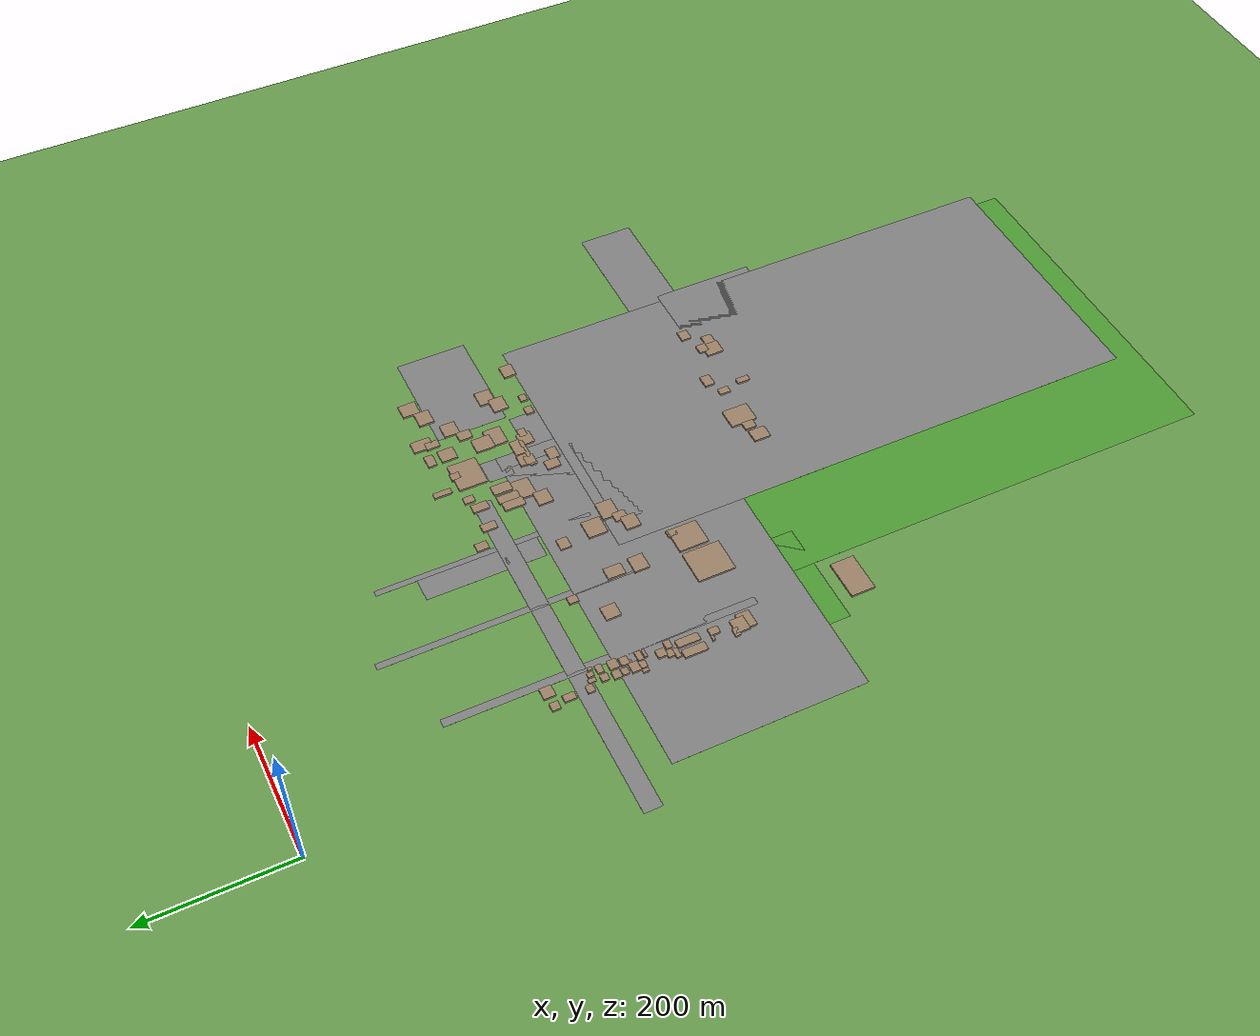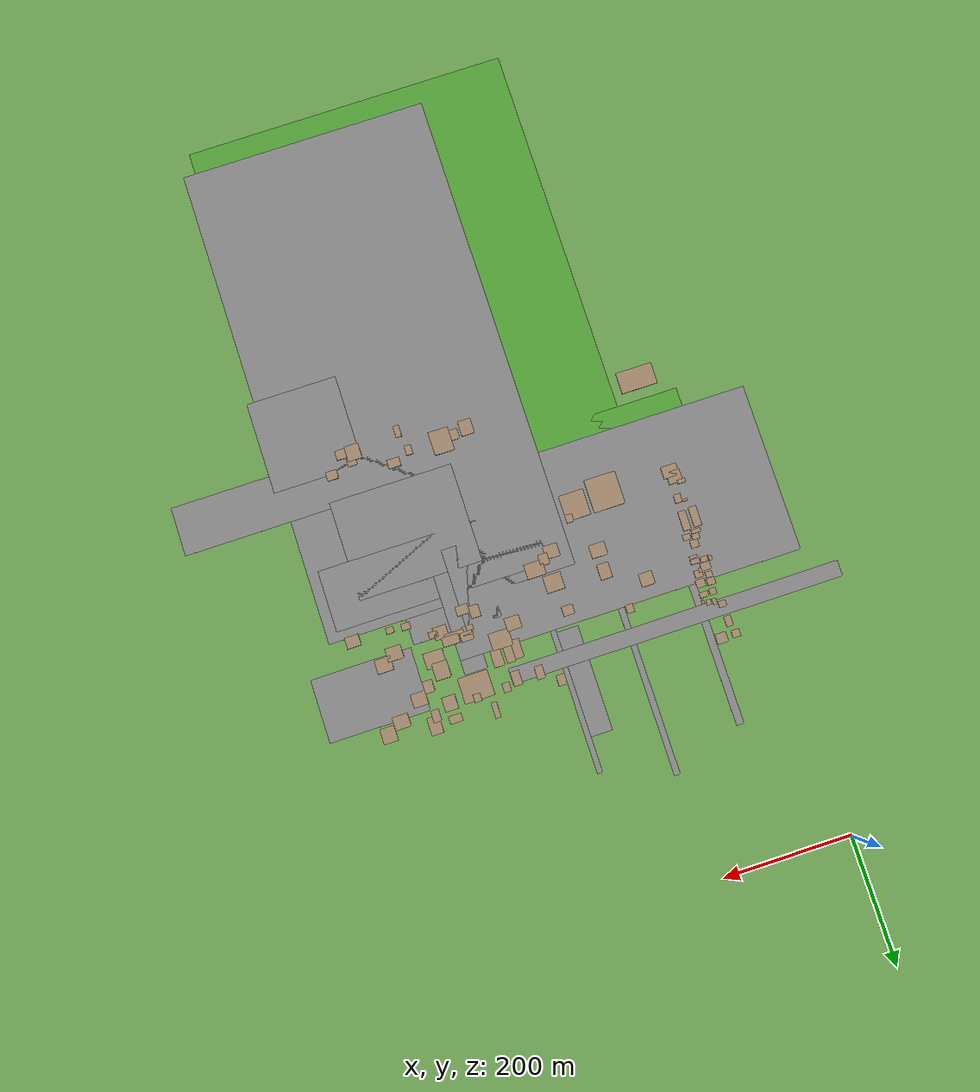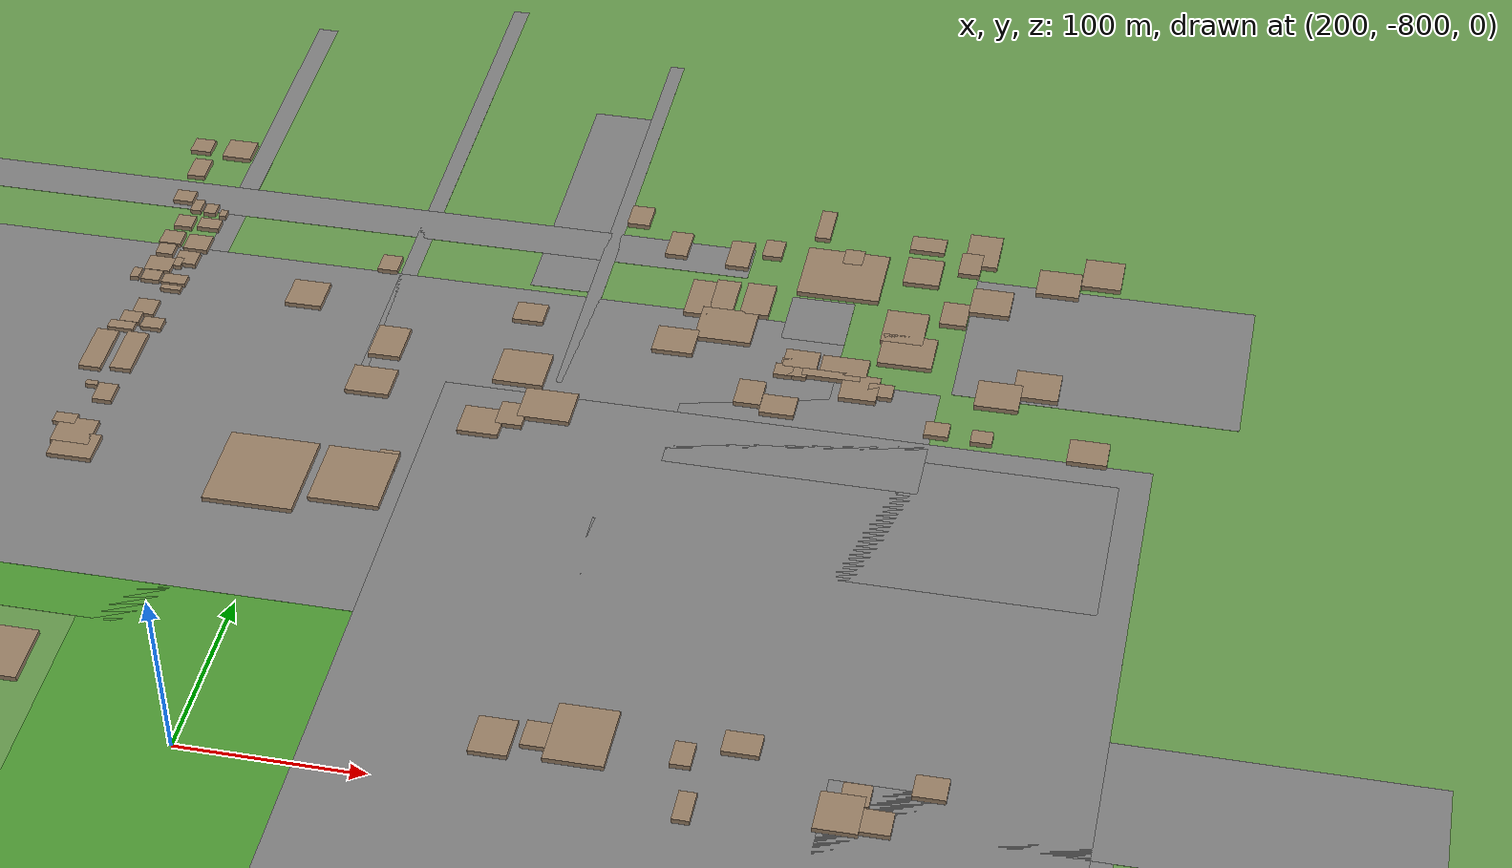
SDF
<sdf version="1.9">
 <world name="kimje_farmland">
  <model name="ground_plane">
   <static>true</static>
   <link name="link">
    <collision name="collision">
     <geometry><plane><normal>0 0 1</normal><size>2000 2000</size></plane></geometry>
    </collision>
    <visual name="visual">
     <geometry><plane><normal>0 0 1</normal><size>2000 2000</size></plane></geometry>
     <material><ambient>0.4 0.6 0.3 1</ambient><diffuse>0.4 0.6 0.3 1</diffuse></material>
    </visual>
   </link>
  </model>
  <model name="osm_7">
   <static>true</static>
   <pose>457.62 -898.85 0.040 0 0 0</pose>
   <link name="link">
    <collision name="collision"><geometry><box><size>392.42 770.92 0.080</size></box></geometry></collision>
    <visual name="visual">
     <geometry><box><size>392.42 770.92 0.080</size></box></geometry>
     <material><ambient>0.5 0.5 0.5 1</ambient><diffuse>0.5 0.5 0.5 1</diffuse></material>
    </visual>
   </link>
  </model>
  <model name="osm_43">
   <static>true</static>
   <pose>216.52 -345.34 0.040 0 0 0</pose>
   <link name="link">
    <collision name="collision"><geometry><box><size>9.61 360.61 0.080</size></box></geometry></collision>
    <visual name="visual">
     <geometry><box><size>9.61 360.61 0.080</size></box></geometry>
     <material><ambient>0.5 0.5 0.5 1</ambient><diffuse>0.5 0.5 0.5 1</diffuse></material>
    </visual>
   </link>
  </model>
  <model name="osm_46">
   <static>true</static>
   <pose>144.42 -381.84 0.040 0 0 0</pose>
   <link name="link">
    <collision name="collision"><geometry><box><size>526.87 25.09 0.080</size></box></geometry></collision>
    <visual name="visual">
     <geometry><box><size>526.87 25.09 0.080</size></box></geometry>
     <material><ambient>0.5 0.5 0.5 1</ambient><diffuse>0.5 0.5 0.5 1</diffuse></material>
    </visual>
   </link>
  </model>
  <model name="osm_54">
   <static>true</static>
   <pose>325.49 -352.69 0.040 0 0 0</pose>
   <link name="link">
    <collision name="collision"><geometry><box><size>8.45 298.10 0.080</size></box></geometry></collision>
    <visual name="visual">
     <geometry><box><size>8.45 298.10 0.080</size></box></geometry>
     <material><ambient>0.5 0.5 0.5 1</ambient><diffuse>0.5 0.5 0.5 1</diffuse></material>
    </visual>
   </link>
  </model>
  <model name="osm_56">
   <static>true</static>
   <pose>102.39 -418.28 0.040 0 0 0</pose>
   <link name="link">
    <collision name="collision"><geometry><box><size>11.99 423.56 0.080</size></box></geometry></collision>
    <visual name="visual">
     <geometry><box><size>11.99 423.56 0.080</size></box></geometry>
     <material><ambient>0.5 0.5 0.5 1</ambient><diffuse>0.5 0.5 0.5 1</diffuse></material>
    </visual>
   </link>
  </model>
  <model name="osm_59">
   <static>true</static>
   <pose>606.28 -749.03 0.040 0 0 0</pose>
   <link name="link">
    <collision name="collision"><geometry><box><size>430.55 77.18 0.080</size></box></geometry></collision>
    <visual name="visual">
     <geometry><box><size>430.55 77.18 0.080</size></box></geometry>
     <material><ambient>0.5 0.5 0.5 1</ambient><diffuse>0.5 0.5 0.5 1</diffuse></material>
    </visual>
   </link>
  </model>
  <model name="osm_62">
   <static>true</static>
   <pose>467.78 -576.32 0.040 0 0 0</pose>
   <link name="link">
    <collision name="collision"><geometry><box><size>338.75 96.90 0.080</size></box></geometry></collision>
    <visual name="visual">
     <geometry><box><size>338.75 96.90 0.080</size></box></geometry>
     <material><ambient>0.5 0.5 0.5 1</ambient><diffuse>0.5 0.5 0.5 1</diffuse></material>
    </visual>
   </link>
  </model>
  <model name="osm_64">
   <static>true</static>
   <pose>593.54 -833.12 0.040 0 0 0</pose>
   <link name="link">
    <collision name="collision"><geometry><box><size>142.78 145.29 0.080</size></box></geometry></collision>
    <visual name="visual">
     <geometry><box><size>142.78 145.29 0.080</size></box></geometry>
     <material><ambient>0.5 0.5 0.5 1</ambient><diffuse>0.5 0.5 0.5 1</diffuse></material>
    </visual>
   </link>
  </model>
  <model name="osm_65">
   <static>true</static>
   <pose>491.71 -641.08 0.040 0 0 0</pose>
   <link name="link">
    <collision name="collision"><geometry><box><size>195.21 157.25 0.080</size></box></geometry></collision>
    <visual name="visual">
     <geometry><box><size>195.21 157.25 0.080</size></box></geometry>
     <material><ambient>0.5 0.5 0.5 1</ambient><diffuse>0.5 0.5 0.5 1</diffuse></material>
    </visual>
   </link>
  </model>
  <model name="osm_95">
   <static>true</static>
   <pose>200.32 -561.10 0.040 0 0 0</pose>
   <link name="link">
    <collision name="collision"><geometry><box><size>544.47 266.11 0.080</size></box></geometry></collision>
    <visual name="visual">
     <geometry><box><size>544.47 266.11 0.080</size></box></geometry>
     <material><ambient>0.5 0.5 0.5 1</ambient><diffuse>0.5 0.5 0.5 1</diffuse></material>
    </visual>
   </link>
  </model>
  <model name="osm_103">
   <static>true</static>
   <pose>454.55 -423.58 0.040 0 0 0</pose>
   <link name="link">
    <collision name="collision"><geometry><box><size>36.00 35.97 0.080</size></box></geometry></collision>
    <visual name="visual">
     <geometry><box><size>36.00 35.97 0.080</size></box></geometry>
     <material><ambient>0.5 0.5 0.5 1</ambient><diffuse>0.5 0.5 0.5 1</diffuse></material>
    </visual>
   </link>
  </model>
  <model name="osm_108">
   <static>true</static>
   <pose>304.50 -341.20 0.040 0 0 0</pose>
   <link name="link">
    <collision name="collision"><geometry><box><size>34.34 164.85 0.080</size></box></geometry></collision>
    <visual name="visual">
     <geometry><box><size>34.34 164.85 0.080</size></box></geometry>
     <material><ambient>0.5 0.5 0.5 1</ambient><diffuse>0.5 0.5 0.5 1</diffuse></material>
    </visual>
   </link>
  </model>
  <model name="osm_113">
   <static>true</static>
   <pose>368.15 -624.36 0.040 0 0 0</pose>
   <link name="link">
    <collision name="collision"><geometry><box><size>3.70 42.74 0.080</size></box></geometry></collision>
    <visual name="visual">
     <geometry><box><size>3.70 42.74 0.080</size></box></geometry>
     <material><ambient>0.5 0.5 0.5 1</ambient><diffuse>0.5 0.5 0.5 1</diffuse></material>
    </visual>
   </link>
  </model>
  <model name="osm_114">
   <static>true</static>
   <pose>410.18 -514.47 0.040 0 0 0</pose>
   <link name="link">
    <collision name="collision"><geometry><box><size>78.25 164.78 0.080</size></box></geometry></collision>
    <visual name="visual">
     <geometry><box><size>78.25 164.78 0.080</size></box></geometry>
     <material><ambient>0.5 0.5 0.5 1</ambient><diffuse>0.5 0.5 0.5 1</diffuse></material>
    </visual>
   </link>
  </model>
  <model name="osm_115">
   <static>true</static>
   <pose>617.06 -421.43 0.040 0 0 0</pose>
   <link name="link">
    <collision name="collision"><geometry><box><size>158.34 99.22 0.080</size></box></geometry></collision>
    <visual name="visual">
     <geometry><box><size>158.34 99.22 0.080</size></box></geometry>
     <material><ambient>0.5 0.5 0.5 1</ambient><diffuse>0.5 0.5 0.5 1</diffuse></material>
    </visual>
   </link>
  </model>
  <model name="osm_116">
   <static>true</static>
   <pose>462.26 -513.09 0.040 0 0 0</pose>
   <link name="link">
    <collision name="collision"><geometry><box><size>139.58 80.26 0.080</size></box></geometry></collision>
    <visual name="visual">
     <geometry><box><size>139.58 80.26 0.080</size></box></geometry>
     <material><ambient>0.5 0.5 0.5 1</ambient><diffuse>0.5 0.5 0.5 1</diffuse></material>
    </visual>
   </link>
  </model>
  <model name="osm_141">
   <static>true</static>
   <pose>378.70 -993.03 0.025 0 0 0</pose>
   <link name="link">
    <collision name="collision"><geometry><box><size>511.87 649.01 0.050</size></box></geometry></collision>
    <visual name="visual">
     <geometry><box><size>511.87 649.01 0.050</size></box></geometry>
     <material><ambient>0.3 0.6 0.2 1</ambient><diffuse>0.3 0.6 0.2 1</diffuse></material>
    </visual>
   </link>
  </model>
  <model name="osm_143">
   <static>true</static>
   <pose>461.86 -383.77 1.500 0 0 0</pose>
   <link name="link">
    <collision name="collision"><geometry><box><size>47.16 40.20 3.000</size></box></geometry></collision>
    <visual name="visual">
     <geometry><box><size>47.16 40.20 3.000</size></box></geometry>
     <material><ambient>0.6 0.5 0.4 1</ambient><diffuse>0.6 0.5 0.4 1</diffuse></material>
    </visual>
   </link>
  </model>
  <model name="osm_144">
   <static>true</static>
   <pose>504.03 -423.41 1.500 0 0 0</pose>
   <link name="link">
    <collision name="collision"><geometry><box><size>23.86 26.79 3.000</size></box></geometry></collision>
    <visual name="visual">
     <geometry><box><size>23.86 26.79 3.000</size></box></geometry>
     <material><ambient>0.6 0.5 0.4 1</ambient><diffuse>0.6 0.5 0.4 1</diffuse></material>
    </visual>
   </link>
  </model>
  <model name="osm_145">
   <static>true</static>
   <pose>508.69 -442.90 1.500 0 0 0</pose>
   <link name="link">
    <collision name="collision"><geometry><box><size>30.65 24.97 3.000</size></box></geometry></collision>
    <visual name="visual">
     <geometry><box><size>30.65 24.97 3.000</size></box></geometry>
     <material><ambient>0.6 0.5 0.4 1</ambient><diffuse>0.6 0.5 0.4 1</diffuse></material>
    </visual>
   </link>
  </model>
  <model name="osm_146">
   <static>true</static>
   <pose>379.53 -457.73 1.500 0 0 0</pose>
   <link name="link">
    <collision name="collision"><geometry><box><size>23.30 20.37 3.000</size></box></geometry></collision>
    <visual name="visual">
     <geometry><box><size>23.30 20.37 3.000</size></box></geometry>
     <material><ambient>0.6 0.5 0.4 1</ambient><diffuse>0.6 0.5 0.4 1</diffuse></material>
    </visual>
   </link>
  </model>
  <model name="osm_147">
   <static>true</static>
   <pose>405.07 -439.84 1.500 0 0 0</pose>
   <link name="link">
    <collision name="collision"><geometry><box><size>32.02 26.37 3.000</size></box></geometry></collision>
    <visual name="visual">
     <geometry><box><size>32.02 26.37 3.000</size></box></geometry>
     <material><ambient>0.6 0.5 0.4 1</ambient><diffuse>0.6 0.5 0.4 1</diffuse></material>
    </visual>
   </link>
  </model>
  <model name="osm_148">
   <static>true</static>
   <pose>418.25 -414.80 1.500 0 0 0</pose>
   <link name="link">
    <collision name="collision"><geometry><box><size>16.33 26.38 3.000</size></box></geometry></collision>
    <visual name="visual">
     <geometry><box><size>16.33 26.38 3.000</size></box></geometry>
     <material><ambient>0.6 0.5 0.4 1</ambient><diffuse>0.6 0.5 0.4 1</diffuse></material>
    </visual>
   </link>
  </model>
  <model name="osm_149">
   <static>true</static>
   <pose>385.80 -418.90 1.500 0 0 0</pose>
   <link name="link">
    <collision name="collision"><geometry><box><size>14.13 29.19 3.000</size></box></geometry></collision>
    <visual name="visual">
     <geometry><box><size>14.13 29.19 3.000</size></box></geometry>
     <material><ambient>0.6 0.5 0.4 1</ambient><diffuse>0.6 0.5 0.4 1</diffuse></material>
    </visual>
   </link>
  </model>
  <model name="osm_150">
   <static>true</static>
   <pose>399.21 -416.71 1.500 0 0 0</pose>
   <link name="link">
    <collision name="collision"><geometry><box><size>13.58 29.54 3.000</size></box></geometry></collision>
    <visual name="visual">
     <geometry><box><size>13.58 29.54 3.000</size></box></geometry>
     <material><ambient>0.6 0.5 0.4 1</ambient><diffuse>0.6 0.5 0.4 1</diffuse></material>
    </visual>
   </link>
  </model>
  <model name="osm_151">
   <static>true</static>
   <pose>400.26 -377.16 1.500 0 0 0</pose>
   <link name="link">
    <collision name="collision"><geometry><box><size>13.40 22.58 3.000</size></box></geometry></collision>
    <visual name="visual">
     <geometry><box><size>13.40 22.58 3.000</size></box></geometry>
     <material><ambient>0.6 0.5 0.4 1</ambient><diffuse>0.6 0.5 0.4 1</diffuse></material>
    </visual>
   </link>
  </model>
  <model name="osm_152">
   <static>true</static>
   <pose>451.92 -460.69 1.500 0 0 0</pose>
   <link name="link">
    <collision name="collision"><geometry><box><size>19.27 14.32 3.000</size></box></geometry></collision>
    <visual name="visual">
     <geometry><box><size>19.27 14.32 3.000</size></box></geometry>
     <material><ambient>0.6 0.5 0.4 1</ambient><diffuse>0.6 0.5 0.4 1</diffuse></material>
    </visual>
   </link>
  </model>
  <model name="osm_153">
   <static>true</static>
   <pose>476.57 -462.14 1.500 0 0 0</pose>
   <link name="link">
    <collision name="collision"><geometry><box><size>26.43 14.49 3.000</size></box></geometry></collision>
    <visual name="visual">
     <geometry><box><size>26.43 14.49 3.000</size></box></geometry>
     <material><ambient>0.6 0.5 0.4 1</ambient><diffuse>0.6 0.5 0.4 1</diffuse></material>
    </visual>
   </link>
  </model>
  <model name="osm_154">
   <static>true</static>
   <pose>470.51 -470.45 1.500 0 0 0</pose>
   <link name="link">
    <collision name="collision"><geometry><box><size>32.67 5.70 3.000</size></box></geometry></collision>
    <visual name="visual">
     <geometry><box><size>32.67 5.70 3.000</size></box></geometry>
     <material><ambient>0.6 0.5 0.4 1</ambient><diffuse>0.6 0.5 0.4 1</diffuse></material>
    </visual>
   </link>
  </model>
  <model name="osm_155">
   <static>true</static>
   <pose>449.21 -468.48 1.500 0 0 0</pose>
   <link name="link">
    <collision name="collision"><geometry><box><size>15.60 13.95 3.000</size></box></geometry></collision>
    <visual name="visual">
     <geometry><box><size>15.60 13.95 3.000</size></box></geometry>
     <material><ambient>0.6 0.5 0.4 1</ambient><diffuse>0.6 0.5 0.4 1</diffuse></material>
    </visual>
   </link>
  </model>
  <model name="osm_156">
   <static>true</static>
   <pose>443.87 -470.95 1.500 0 0 0</pose>
   <link name="link">
    <collision name="collision"><geometry><box><size>10.46 9.36 3.000</size></box></geometry></collision>
    <visual name="visual">
     <geometry><box><size>10.46 9.36 3.000</size></box></geometry>
     <material><ambient>0.6 0.5 0.4 1</ambient><diffuse>0.6 0.5 0.4 1</diffuse></material>
    </visual>
   </link>
  </model>
  <model name="osm_157">
   <static>true</static>
   <pose>487.79 -478.14 1.500 0 0 0</pose>
   <link name="link">
    <collision name="collision"><geometry><box><size>20.87 19.73 3.000</size></box></geometry></collision>
    <visual name="visual">
     <geometry><box><size>20.87 19.73 3.000</size></box></geometry>
     <material><ambient>0.6 0.5 0.4 1</ambient><diffuse>0.6 0.5 0.4 1</diffuse></material>
    </visual>
   </link>
  </model>
  <model name="osm_158">
   <static>true</static>
   <pose>499.47 -478.28 1.500 0 0 0</pose>
   <link name="link">
    <collision name="collision"><geometry><box><size>14.08 10.54 3.000</size></box></geometry></collision>
    <visual name="visual">
     <geometry><box><size>14.08 10.54 3.000</size></box></geometry>
     <material><ambient>0.6 0.5 0.4 1</ambient><diffuse>0.6 0.5 0.4 1</diffuse></material>
    </visual>
   </link>
  </model>
  <model name="osm_159">
   <static>true</static>
   <pose>446.49 -500.43 1.500 0 0 0</pose>
   <link name="link">
    <collision name="collision"><geometry><box><size>19.40 14.96 3.000</size></box></geometry></collision>
    <visual name="visual">
     <geometry><box><size>19.40 14.96 3.000</size></box></geometry>
     <material><ambient>0.6 0.5 0.4 1</ambient><diffuse>0.6 0.5 0.4 1</diffuse></material>
    </visual>
   </link>
  </model>
  <model name="osm_160">
   <static>true</static>
   <pose>429.04 -492.81 1.500 0 0 0</pose>
   <link name="link">
    <collision name="collision"><geometry><box><size>15.13 19.22 3.000</size></box></geometry></collision>
    <visual name="visual">
     <geometry><box><size>15.13 19.22 3.000</size></box></geometry>
     <material><ambient>0.6 0.5 0.4 1</ambient><diffuse>0.6 0.5 0.4 1</diffuse></material>
    </visual>
   </link>
  </model>
  <model name="osm_803">
   <static>true</static>
   <pose>64.06 -337.68 1.500 0 0 0</pose>
   <link name="link">
    <collision name="collision"><geometry><box><size>12.28 11.64 3.000</size></box></geometry></collision>
    <visual name="visual">
     <geometry><box><size>12.28 11.64 3.000</size></box></geometry>
     <material><ambient>0.6 0.5 0.4 1</ambient><diffuse>0.6 0.5 0.4 1</diffuse></material>
    </visual>
   </link>
  </model>
  <model name="osm_804">
   <static>true</static>
   <pose>86.95 -337.48 1.500 0 0 0</pose>
   <link name="link">
    <collision name="collision"><geometry><box><size>17.11 16.12 3.000</size></box></geometry></collision>
    <visual name="visual">
     <geometry><box><size>17.11 16.12 3.000</size></box></geometry>
     <material><ambient>0.6 0.5 0.4 1</ambient><diffuse>0.6 0.5 0.4 1</diffuse></material>
    </visual>
   </link>
  </model>
  <model name="osm_806">
   <static>true</static>
   <pose>68.75 -358.73 1.500 0 0 0</pose>
   <link name="link">
    <collision name="collision"><geometry><box><size>10.55 16.06 3.000</size></box></geometry></collision>
    <visual name="visual">
     <geometry><box><size>10.55 16.06 3.000</size></box></geometry>
     <material><ambient>0.6 0.5 0.4 1</ambient><diffuse>0.6 0.5 0.4 1</diffuse></material>
    </visual>
   </link>
  </model>
  <model name="osm_848">
   <static>true</static>
   <pose>68.85 -386.21 1.500 0 0 0</pose>
   <link name="link">
    <collision name="collision"><geometry><box><size>11.64 9.64 3.000</size></box></geometry></collision>
    <visual name="visual">
     <geometry><box><size>11.64 9.64 3.000</size></box></geometry>
     <material><ambient>0.6 0.5 0.4 1</ambient><diffuse>0.6 0.5 0.4 1</diffuse></material>
    </visual>
   </link>
  </model>
  <model name="osm_849">
   <static>true</static>
   <pose>78.98 -393.22 1.500 0 0 0</pose>
   <link name="link">
    <collision name="collision"><geometry><box><size>6.05 9.94 3.000</size></box></geometry></collision>
    <visual name="visual">
     <geometry><box><size>6.05 9.94 3.000</size></box></geometry>
     <material><ambient>0.6 0.5 0.4 1</ambient><diffuse>0.6 0.5 0.4 1</diffuse></material>
    </visual>
   </link>
  </model>
  <model name="osm_850">
   <static>true</static>
   <pose>87.72 -394.78 1.500 0 0 0</pose>
   <link name="link">
    <collision name="collision"><geometry><box><size>7.16 8.34 3.000</size></box></geometry></collision>
    <visual name="visual">
     <geometry><box><size>7.16 8.34 3.000</size></box></geometry>
     <material><ambient>0.6 0.5 0.4 1</ambient><diffuse>0.6 0.5 0.4 1</diffuse></material>
    </visual>
   </link>
  </model>
  <model name="osm_851">
   <static>true</static>
   <pose>96.08 -397.63 1.500 0 0 0</pose>
   <link name="link">
    <collision name="collision"><geometry><box><size>4.04 5.84 3.000</size></box></geometry></collision>
    <visual name="visual">
     <geometry><box><size>4.04 5.84 3.000</size></box></geometry>
     <material><ambient>0.6 0.5 0.4 1</ambient><diffuse>0.6 0.5 0.4 1</diffuse></material>
    </visual>
   </link>
  </model>
  <model name="osm_852">
   <static>true</static>
   <pose>76.40 -408.67 1.500 0 0 0</pose>
   <link name="link">
    <collision name="collision"><geometry><box><size>10.54 10.22 3.000</size></box></geometry></collision>
    <visual name="visual">
     <geometry><box><size>10.54 10.22 3.000</size></box></geometry>
     <material><ambient>0.6 0.5 0.4 1</ambient><diffuse>0.6 0.5 0.4 1</diffuse></material>
    </visual>
   </link>
  </model>
  <model name="osm_853">
   <static>true</static>
   <pose>91.08 -408.12 1.500 0 0 0</pose>
   <link name="link">
    <collision name="collision"><geometry><box><size>12.81 8.72 3.000</size></box></geometry></collision>
    <visual name="visual">
     <geometry><box><size>12.81 8.72 3.000</size></box></geometry>
     <material><ambient>0.6 0.5 0.4 1</ambient><diffuse>0.6 0.5 0.4 1</diffuse></material>
    </visual>
   </link>
  </model>
  <model name="osm_854">
   <static>true</static>
   <pose>90.02 -426.02 1.500 0 0 0</pose>
   <link name="link">
    <collision name="collision"><geometry><box><size>14.17 12.85 3.000</size></box></geometry></collision>
    <visual name="visual">
     <geometry><box><size>14.17 12.85 3.000</size></box></geometry>
     <material><ambient>0.6 0.5 0.4 1</ambient><diffuse>0.6 0.5 0.4 1</diffuse></material>
    </visual>
   </link>
  </model>
  <model name="osm_855">
   <static>true</static>
   <pose>73.94 -424.12 1.500 0 0 0</pose>
   <link name="link">
    <collision name="collision"><geometry><box><size>12.69 11.08 3.000</size></box></geometry></collision>
    <visual name="visual">
     <geometry><box><size>12.69 11.08 3.000</size></box></geometry>
     <material><ambient>0.6 0.5 0.4 1</ambient><diffuse>0.6 0.5 0.4 1</diffuse></material>
    </visual>
   </link>
  </model>
  <model name="osm_856">
   <static>true</static>
   <pose>88.31 -440.38 1.500 0 0 0</pose>
   <link name="link">
    <collision name="collision"><geometry><box><size>12.49 11.10 3.000</size></box></geometry></collision>
    <visual name="visual">
     <geometry><box><size>12.49 11.10 3.000</size></box></geometry>
     <material><ambient>0.6 0.5 0.4 1</ambient><diffuse>0.6 0.5 0.4 1</diffuse></material>
    </visual>
   </link>
  </model>
  <model name="osm_857">
   <static>true</static>
   <pose>73.73 -435.00 1.500 0 0 0</pose>
   <link name="link">
    <collision name="collision"><geometry><box><size>10.17 8.97 3.000</size></box></geometry></collision>
    <visual name="visual">
     <geometry><box><size>10.17 8.97 3.000</size></box></geometry>
     <material><ambient>0.6 0.5 0.4 1</ambient><diffuse>0.6 0.5 0.4 1</diffuse></material>
    </visual>
   </link>
  </model>
  <model name="osm_858">
   <static>true</static>
   <pose>74.49 -448.42 1.500 0 0 0</pose>
   <link name="link">
    <collision name="collision"><geometry><box><size>15.02 11.99 3.000</size></box></geometry></collision>
    <visual name="visual">
     <geometry><box><size>15.02 11.99 3.000</size></box></geometry>
     <material><ambient>0.6 0.5 0.4 1</ambient><diffuse>0.6 0.5 0.4 1</diffuse></material>
    </visual>
   </link>
  </model>
  <model name="osm_859">
   <static>true</static>
   <pose>84.45 -444.99 1.500 0 0 0</pose>
   <link name="link">
    <collision name="collision"><geometry><box><size>4.68 7.40 3.000</size></box></geometry></collision>
    <visual name="visual">
     <geometry><box><size>4.68 7.40 3.000</size></box></geometry>
     <material><ambient>0.6 0.5 0.4 1</ambient><diffuse>0.6 0.5 0.4 1</diffuse></material>
    </visual>
   </link>
  </model>
  <model name="osm_860">
   <static>true</static>
   <pose>87.27 -460.07 1.500 0 0 0</pose>
   <link name="link">
    <collision name="collision"><geometry><box><size>14.09 7.70 3.000</size></box></geometry></collision>
    <visual name="visual">
     <geometry><box><size>14.09 7.70 3.000</size></box></geometry>
     <material><ambient>0.6 0.5 0.4 1</ambient><diffuse>0.6 0.5 0.4 1</diffuse></material>
    </visual>
   </link>
  </model>
  <model name="osm_861">
   <static>true</static>
   <pose>73.26 -459.07 1.500 0 0 0</pose>
   <link name="link">
    <collision name="collision"><geometry><box><size>10.69 8.67 3.000</size></box></geometry></collision>
    <visual name="visual">
     <geometry><box><size>10.69 8.67 3.000</size></box></geometry>
     <material><ambient>0.6 0.5 0.4 1</ambient><diffuse>0.6 0.5 0.4 1</diffuse></material>
    </visual>
   </link>
  </model>
  <model name="osm_862">
   <static>true</static>
   <pose>87.58 -467.54 1.500 0 0 0</pose>
   <link name="link">
    <collision name="collision"><geometry><box><size>11.87 3.87 3.000</size></box></geometry></collision>
    <visual name="visual">
     <geometry><box><size>11.87 3.87 3.000</size></box></geometry>
     <material><ambient>0.6 0.5 0.4 1</ambient><diffuse>0.6 0.5 0.4 1</diffuse></material>
    </visual>
   </link>
  </model>
  <model name="osm_863">
   <static>true</static>
   <pose>63.75 -458.44 1.500 0 0 0</pose>
   <link name="link">
    <collision name="collision"><geometry><box><size>4.91 8.12 3.000</size></box></geometry></collision>
    <visual name="visual">
     <geometry><box><size>4.91 8.12 3.000</size></box></geometry>
     <material><ambient>0.6 0.5 0.4 1</ambient><diffuse>0.6 0.5 0.4 1</diffuse></material>
    </visual>
   </link>
  </model>
  <model name="osm_883">
   <static>true</static>
   <pose>79.07 -486.35 1.500 0 0 0</pose>
   <link name="link">
    <collision name="collision"><geometry><box><size>12.50 12.61 3.000</size></box></geometry></collision>
    <visual name="visual">
     <geometry><box><size>12.50 12.61 3.000</size></box></geometry>
     <material><ambient>0.6 0.5 0.4 1</ambient><diffuse>0.6 0.5 0.4 1</diffuse></material>
    </visual>
   </link>
  </model>
  <model name="osm_884">
   <static>true</static>
   <pose>73.86 -496.17 1.500 0 0 0</pose>
   <link name="link">
    <collision name="collision"><geometry><box><size>11.21 8.94 3.000</size></box></geometry></collision>
    <visual name="visual">
     <geometry><box><size>11.21 8.94 3.000</size></box></geometry>
     <material><ambient>0.6 0.5 0.4 1</ambient><diffuse>0.6 0.5 0.4 1</diffuse></material>
    </visual>
   </link>
  </model>
  <model name="osm_885">
   <static>true</static>
   <pose>87.40 -499.13 1.500 0 0 0</pose>
   <link name="link">
    <collision name="collision"><geometry><box><size>12.03 8.79 3.000</size></box></geometry></collision>
    <visual name="visual">
     <geometry><box><size>12.03 8.79 3.000</size></box></geometry>
     <material><ambient>0.6 0.5 0.4 1</ambient><diffuse>0.6 0.5 0.4 1</diffuse></material>
    </visual>
   </link>
  </model>
  <model name="osm_886">
   <static>true</static>
   <pose>70.86 -503.96 1.500 0 0 0</pose>
   <link name="link">
    <collision name="collision"><geometry><box><size>14.86 6.40 3.000</size></box></geometry></collision>
    <visual name="visual">
     <geometry><box><size>14.86 6.40 3.000</size></box></geometry>
     <material><ambient>0.6 0.5 0.4 1</ambient><diffuse>0.6 0.5 0.4 1</diffuse></material>
    </visual>
   </link>
  </model>
  <model name="osm_887">
   <static>true</static>
   <pose>64.98 -525.60 1.500 0 0 0</pose>
   <link name="link">
    <collision name="collision"><geometry><box><size>12.65 31.92 3.000</size></box></geometry></collision>
    <visual name="visual">
     <geometry><box><size>12.65 31.92 3.000</size></box></geometry>
     <material><ambient>0.6 0.5 0.4 1</ambient><diffuse>0.6 0.5 0.4 1</diffuse></material>
    </visual>
   </link>
  </model>
  <model name="osm_888">
   <static>true</static>
   <pose>82.30 -524.22 1.500 0 0 0</pose>
   <link name="link">
    <collision name="collision"><geometry><box><size>12.10 31.01 3.000</size></box></geometry></collision>
    <visual name="visual">
     <geometry><box><size>12.10 31.01 3.000</size></box></geometry>
     <material><ambient>0.6 0.5 0.4 1</ambient><diffuse>0.6 0.5 0.4 1</diffuse></material>
    </visual>
   </link>
  </model>
  <model name="osm_915">
   <static>true</static>
   <pose>71.03 -553.86 1.500 0 0 0</pose>
   <link name="link">
    <collision name="collision"><geometry><box><size>6.77 3.40 3.000</size></box></geometry></collision>
    <visual name="visual">
     <geometry><box><size>6.77 3.40 3.000</size></box></geometry>
     <material><ambient>0.6 0.5 0.4 1</ambient><diffuse>0.6 0.5 0.4 1</diffuse></material>
    </visual>
   </link>
  </model>
  <model name="osm_916">
   <static>true</static>
   <pose>80.84 -559.75 1.500 0 0 0</pose>
   <link name="link">
    <collision name="collision"><geometry><box><size>10.92 13.53 3.000</size></box></geometry></collision>
    <visual name="visual">
     <geometry><box><size>10.92 13.53 3.000</size></box></geometry>
     <material><ambient>0.6 0.5 0.4 1</ambient><diffuse>0.6 0.5 0.4 1</diffuse></material>
    </visual>
   </link>
  </model>
  <model name="osm_917">
   <static>true</static>
   <pose>66.80 -584.07 1.500 0 0 0</pose>
   <link name="link">
    <collision name="collision"><geometry><box><size>12.68 7.50 3.000</size></box></geometry></collision>
    <visual name="visual">
     <geometry><box><size>12.68 7.50 3.000</size></box></geometry>
     <material><ambient>0.6 0.5 0.4 1</ambient><diffuse>0.6 0.5 0.4 1</diffuse></material>
    </visual>
   </link>
  </model>
  <model name="osm_918">
   <static>true</static>
   <pose>75.19 -592.84 1.500 0 0 0</pose>
   <link name="link">
    <collision name="collision"><geometry><box><size>21.60 19.28 3.000</size></box></geometry></collision>
    <visual name="visual">
     <geometry><box><size>21.60 19.28 3.000</size></box></geometry>
     <material><ambient>0.6 0.5 0.4 1</ambient><diffuse>0.6 0.5 0.4 1</diffuse></material>
    </visual>
   </link>
  </model>
  <model name="osm_919">
   <static>true</static>
   <pose>78.68 -603.55 1.500 0 0 0</pose>
   <link name="link">
    <collision name="collision"><geometry><box><size>24.81 19.08 3.000</size></box></geometry></collision>
    <visual name="visual">
     <geometry><box><size>24.81 19.08 3.000</size></box></geometry>
     <material><ambient>0.6 0.5 0.4 1</ambient><diffuse>0.6 0.5 0.4 1</diffuse></material>
    </visual>
   </link>
  </model>
  <model name="osm_946">
   <static>true</static>
   <pose>105.52 -674.30 0.025 0 0 0</pose>
   <link name="link">
    <collision name="collision"><geometry><box><size>156.44 99.30 0.050</size></box></geometry></collision>
    <visual name="visual">
     <geometry><box><size>156.44 99.30 0.050</size></box></geometry>
     <material><ambient>0.3 0.6 0.2 1</ambient><diffuse>0.3 0.6 0.2 1</diffuse></material>
    </visual>
   </link>
  </model>
  <model name="osm_1545">
   <static>true</static>
   <pose>80.89 -756.84 1.500 0 0 0</pose>
   <link name="link">
    <collision name="collision"><geometry><box><size>57.15 33.66 3.000</size></box></geometry></collision>
    <visual name="visual">
     <geometry><box><size>57.15 33.66 3.000</size></box></geometry>
     <material><ambient>0.6 0.5 0.4 1</ambient><diffuse>0.6 0.5 0.4 1</diffuse></material>
    </visual>
   </link>
  </model>
  <model name="osm_1708">
   <static>true</static>
   <pose>608.04 -356.32 1.500 0 0 0</pose>
   <link name="link">
    <collision name="collision"><geometry><box><size>22.55 24.16 3.000</size></box></geometry></collision>
    <visual name="visual">
     <geometry><box><size>22.55 24.16 3.000</size></box></geometry>
     <material><ambient>0.6 0.5 0.4 1</ambient><diffuse>0.6 0.5 0.4 1</diffuse></material>
    </visual>
   </link>
  </model>
  <model name="osm_1709">
   <static>true</static>
   <pose>617.96 -506.52 1.500 0 0 0</pose>
   <link name="link">
    <collision name="collision"><geometry><box><size>21.83 17.83 3.000</size></box></geometry></collision>
    <visual name="visual">
     <geometry><box><size>21.83 17.83 3.000</size></box></geometry>
     <material><ambient>0.6 0.5 0.4 1</ambient><diffuse>0.6 0.5 0.4 1</diffuse></material>
    </visual>
   </link>
  </model>
  <model name="osm_1815">
   <static>true</static>
   <pose>505.59 -348.24 1.500 0 0 0</pose>
   <link name="link">
    <collision name="collision"><geometry><box><size>20.01 12.30 3.000</size></box></geometry></collision>
    <visual name="visual">
     <geometry><box><size>20.01 12.30 3.000</size></box></geometry>
     <material><ambient>0.6 0.5 0.4 1</ambient><diffuse>0.6 0.5 0.4 1</diffuse></material>
    </visual>
   </link>
  </model>
  <model name="osm_1818">
   <static>true</static>
   <pose>418.48 -368.72 1.500 0 0 0</pose>
   <link name="link">
    <collision name="collision"><geometry><box><size>11.34 14.54 3.000</size></box></geometry></collision>
    <visual name="visual">
     <geometry><box><size>11.34 14.54 3.000</size></box></geometry>
     <material><ambient>0.6 0.5 0.4 1</ambient><diffuse>0.6 0.5 0.4 1</diffuse></material>
    </visual>
   </link>
  </model>
  <model name="osm_1819">
   <static>true</static>
   <pose>363.93 -374.64 1.500 0 0 0</pose>
   <link name="link">
    <collision name="collision"><geometry><box><size>12.66 20.56 3.000</size></box></geometry></collision>
    <visual name="visual">
     <geometry><box><size>12.66 20.56 3.000</size></box></geometry>
     <material><ambient>0.6 0.5 0.4 1</ambient><diffuse>0.6 0.5 0.4 1</diffuse></material>
    </visual>
   </link>
  </model>
  <model name="osm_1820">
   <static>true</static>
   <pose>336.46 -353.52 1.500 0 0 0</pose>
   <link name="link">
    <collision name="collision"><geometry><box><size>13.10 16.61 3.000</size></box></geometry></collision>
    <visual name="visual">
     <geometry><box><size>13.10 16.61 3.000</size></box></geometry>
     <material><ambient>0.6 0.5 0.4 1</ambient><diffuse>0.6 0.5 0.4 1</diffuse></material>
    </visual>
   </link>
  </model>
  <model name="osm_1823">
   <static>true</static>
   <pose>204.41 -422.94 1.500 0 0 0</pose>
   <link name="link">
    <collision name="collision"><geometry><box><size>11.50 12.95 3.000</size></box></geometry></collision>
    <visual name="visual">
     <geometry><box><size>11.50 12.95 3.000</size></box></geometry>
     <material><ambient>0.6 0.5 0.4 1</ambient><diffuse>0.6 0.5 0.4 1</diffuse></material>
    </visual>
   </link>
  </model>
  <model name="osm_1824">
   <static>true</static>
   <pose>222.82 -489.20 1.500 0 0 0</pose>
   <link name="link">
    <collision name="collision"><geometry><box><size>18.17 24.59 3.000</size></box></geometry></collision>
    <visual name="visual">
     <geometry><box><size>18.17 24.59 3.000</size></box></geometry>
     <material><ambient>0.6 0.5 0.4 1</ambient><diffuse>0.6 0.5 0.4 1</diffuse></material>
    </visual>
   </link>
  </model>
  <model name="osm_1887">
   <static>true</static>
   <pose>165.66 -457.67 1.500 0 0 0</pose>
   <link name="link">
    <collision name="collision"><geometry><box><size>21.08 20.66 3.000</size></box></geometry></collision>
    <visual name="visual">
     <geometry><box><size>21.08 20.66 3.000</size></box></geometry>
     <material><ambient>0.6 0.5 0.4 1</ambient><diffuse>0.6 0.5 0.4 1</diffuse></material>
    </visual>
   </link>
  </model>
  <model name="osm_1888">
   <static>true</static>
   <pose>465.16 -367.68 1.500 0 0 0</pose>
   <link name="link">
    <collision name="collision"><geometry><box><size>11.27 12.80 3.000</size></box></geometry></collision>
    <visual name="visual">
     <geometry><box><size>11.27 12.80 3.000</size></box></geometry>
     <material><ambient>0.6 0.5 0.4 1</ambient><diffuse>0.6 0.5 0.4 1</diffuse></material>
    </visual>
   </link>
  </model>
  <model name="osm_1889">
   <static>true</static>
   <pose>548.64 -392.49 1.500 0 0 0</pose>
   <link name="link">
    <collision name="collision"><geometry><box><size>22.94 21.30 3.000</size></box></geometry></collision>
    <visual name="visual">
     <geometry><box><size>22.94 21.30 3.000</size></box></geometry>
     <material><ambient>0.6 0.5 0.4 1</ambient><diffuse>0.6 0.5 0.4 1</diffuse></material>
    </visual>
   </link>
  </model>
  <model name="osm_1890">
   <static>true</static>
   <pose>529.86 -406.55 1.500 0 0 0</pose>
   <link name="link">
    <collision name="collision"><geometry><box><size>15.18 18.97 3.000</size></box></geometry></collision>
    <visual name="visual">
     <geometry><box><size>15.18 18.97 3.000</size></box></geometry>
     <material><ambient>0.6 0.5 0.4 1</ambient><diffuse>0.6 0.5 0.4 1</diffuse></material>
    </visual>
   </link>
  </model>
  <model name="osm_1891">
   <static>true</static>
   <pose>506.54 -372.86 1.500 0 0 0</pose>
   <link name="link">
    <collision name="collision"><geometry><box><size>20.86 22.40 3.000</size></box></geometry></collision>
    <visual name="visual">
     <geometry><box><size>20.86 22.40 3.000</size></box></geometry>
     <material><ambient>0.6 0.5 0.4 1</ambient><diffuse>0.6 0.5 0.4 1</diffuse></material>
    </visual>
   </link>
  </model>
  <model name="osm_1892">
   <static>true</static>
   <pose>444.16 -341.48 1.500 0 0 0</pose>
   <link name="link">
    <collision name="collision"><geometry><box><size>8.81 24.96 3.000</size></box></geometry></collision>
    <visual name="visual">
     <geometry><box><size>8.81 24.96 3.000</size></box></geometry>
     <material><ambient>0.6 0.5 0.4 1</ambient><diffuse>0.6 0.5 0.4 1</diffuse></material>
    </visual>
   </link>
  </model>
  <model name="osm_1893">
   <static>true</static>
   <pose>301.50 -496.50 1.500 0 0 0</pose>
   <link name="link">
    <collision name="collision"><geometry><box><size>28.24 26.56 3.000</size></box></geometry></collision>
    <visual name="visual">
     <geometry><box><size>28.24 26.56 3.000</size></box></geometry>
     <material><ambient>0.6 0.5 0.4 1</ambient><diffuse>0.6 0.5 0.4 1</diffuse></material>
    </visual>
   </link>
  </model>
  <model name="osm_1894">
   <static>true</static>
   <pose>563.71 -470.01 1.500 0 0 0</pose>
   <link name="link">
    <collision name="collision"><geometry><box><size>24.60 21.10 3.000</size></box></geometry></collision>
    <visual name="visual">
     <geometry><box><size>24.60 21.10 3.000</size></box></geometry>
     <material><ambient>0.6 0.5 0.4 1</ambient><diffuse>0.6 0.5 0.4 1</diffuse></material>
    </visual>
   </link>
  </model>
  <model name="osm_1895">
   <static>true</static>
   <pose>583.73 -458.06 1.500 0 0 0</pose>
   <link name="link">
    <collision name="collision"><geometry><box><size>25.14 21.84 3.000</size></box></geometry></collision>
    <visual name="visual">
     <geometry><box><size>25.14 21.84 3.000</size></box></geometry>
     <material><ambient>0.6 0.5 0.4 1</ambient><diffuse>0.6 0.5 0.4 1</diffuse></material>
    </visual>
   </link>
  </model>
  <model name="osm_1896">
   <static>true</static>
   <pose>559.79 -505.14 1.500 0 0 0</pose>
   <link name="link">
    <collision name="collision"><geometry><box><size>11.82 9.75 3.000</size></box></geometry></collision>
    <visual name="visual">
     <geometry><box><size>11.82 9.75 3.000</size></box></geometry>
     <material><ambient>0.6 0.5 0.4 1</ambient><diffuse>0.6 0.5 0.4 1</diffuse></material>
    </visual>
   </link>
  </model>
  <model name="osm_1897">
   <static>true</static>
   <pose>534.89 -503.45 1.500 0 0 0</pose>
   <link name="link">
    <collision name="collision"><geometry><box><size>13.42 11.02 3.000</size></box></geometry></collision>
    <visual name="visual">
     <geometry><box><size>13.42 11.02 3.000</size></box></geometry>
     <material><ambient>0.6 0.5 0.4 1</ambient><diffuse>0.6 0.5 0.4 1</diffuse></material>
    </visual>
   </link>
  </model>
  <model name="osm_1898">
   <static>true</static>
   <pose>304.93 -534.81 1.500 0 0 0</pose>
   <link name="link">
    <collision name="collision"><geometry><box><size>14.89 17.52 3.000</size></box></geometry></collision>
    <visual name="visual">
     <geometry><box><size>14.89 17.52 3.000</size></box></geometry>
     <material><ambient>0.6 0.5 0.4 1</ambient><diffuse>0.6 0.5 0.4 1</diffuse></material>
    </visual>
   </link>
  </model>
  <model name="osm_1899">
   <static>true</static>
   <pose>290.03 -543.21 1.500 0 0 0</pose>
   <link name="link">
    <collision name="collision"><geometry><box><size>22.85 20.45 3.000</size></box></geometry></collision>
    <visual name="visual">
     <geometry><box><size>22.85 20.45 3.000</size></box></geometry>
     <material><ambient>0.6 0.5 0.4 1</ambient><diffuse>0.6 0.5 0.4 1</diffuse></material>
    </visual>
   </link>
  </model>
  <model name="osm_1900">
   <static>true</static>
   <pose>322.47 -524.29 1.500 0 0 0</pose>
   <link name="link">
    <collision name="collision"><geometry><box><size>29.18 23.30 3.000</size></box></geometry></collision>
    <visual name="visual">
     <geometry><box><size>29.18 23.30 3.000</size></box></geometry>
     <material><ambient>0.6 0.5 0.4 1</ambient><diffuse>0.6 0.5 0.4 1</diffuse></material>
    </visual>
   </link>
  </model>
  <model name="osm_1901">
   <static>true</static>
   <pose>234.08 -598.91 1.500 0 0 0</pose>
   <link name="link">
    <collision name="collision"><geometry><box><size>39.00 41.32 3.000</size></box></geometry></collision>
    <visual name="visual">
     <geometry><box><size>39.00 41.32 3.000</size></box></geometry>
     <material><ambient>0.6 0.5 0.4 1</ambient><diffuse>0.6 0.5 0.4 1</diffuse></material>
    </visual>
   </link>
  </model>
  <model name="osm_1902">
   <static>true</static>
   <pose>248.08 -582.34 1.500 0 0 0</pose>
   <link name="link">
    <collision name="collision"><geometry><box><size>11.12 12.79 3.000</size></box></geometry></collision>
    <visual name="visual">
     <geometry><box><size>11.12 12.79 3.000</size></box></geometry>
     <material><ambient>0.6 0.5 0.4 1</ambient><diffuse>0.6 0.5 0.4 1</diffuse></material>
    </visual>
   </link>
  </model>
  <model name="osm_1903">
   <static>true</static>
   <pose>184.23 -604.23 1.500 0 0 0</pose>
   <link name="link">
    <collision name="collision"><geometry><box><size>49.75 52.29 3.000</size></box></geometry></collision>
    <visual name="visual">
     <geometry><box><size>49.75 52.29 3.000</size></box></geometry>
     <material><ambient>0.6 0.5 0.4 1</ambient><diffuse>0.6 0.5 0.4 1</diffuse></material>
    </visual>
   </link>
  </model>
  <model name="osm_1904">
   <static>true</static>
   <pose>221.86 -522.56 1.500 0 0 0</pose>
   <link name="link">
    <collision name="collision"><geometry><box><size>24.77 20.94 3.000</size></box></geometry></collision>
    <visual name="visual">
     <geometry><box><size>24.77 20.94 3.000</size></box></geometry>
     <material><ambient>0.6 0.5 0.4 1</ambient><diffuse>0.6 0.5 0.4 1</diffuse></material>
    </visual>
   </link>
  </model>
  <model name="osm_1905">
   <static>true</static>
   <pose>294.07 -450.01 1.500 0 0 0</pose>
   <link name="link">
    <collision name="collision"><geometry><box><size>17.62 15.05 3.000</size></box></geometry></collision>
    <visual name="visual">
     <geometry><box><size>17.62 15.05 3.000</size></box></geometry>
     <material><ambient>0.6 0.5 0.4 1</ambient><diffuse>0.6 0.5 0.4 1</diffuse></material>
    </visual>
   </link>
  </model>
  <model name="osm_1906">
   <static>true</static>
   <pose>532.19 -361.16 1.500 0 0 0</pose>
   <link name="link">
    <collision name="collision"><geometry><box><size>12.43 18.76 3.000</size></box></geometry></collision>
    <visual name="visual">
     <geometry><box><size>12.43 18.76 3.000</size></box></geometry>
     <material><ambient>0.6 0.5 0.4 1</ambient><diffuse>0.6 0.5 0.4 1</diffuse></material>
    </visual>
   </link>
  </model>
  <model name="osm_1907">
   <static>true</static>
   <pose>537.80 -348.15 1.500 0 0 0</pose>
   <link name="link">
    <collision name="collision"><geometry><box><size>18.97 27.62 3.000</size></box></geometry></collision>
    <visual name="visual">
     <geometry><box><size>18.97 27.62 3.000</size></box></geometry>
     <material><ambient>0.6 0.5 0.4 1</ambient><diffuse>0.6 0.5 0.4 1</diffuse></material>
    </visual>
   </link>
  </model>
  <model name="osm_1908">
   <static>true</static>
   <pose>584.27 -369.00 1.500 0 0 0</pose>
   <link name="link">
    <collision name="collision"><geometry><box><size>24.50 20.97 3.000</size></box></geometry></collision>
    <visual name="visual">
     <geometry><box><size>24.50 20.97 3.000</size></box></geometry>
     <material><ambient>0.6 0.5 0.4 1</ambient><diffuse>0.6 0.5 0.4 1</diffuse></material>
    </visual>
   </link>
  </model>
  <model name="osm_1910">
   <static>true</static>
   <pose>456.93 -793.02 1.500 0 0 0</pose>
   <link name="link">
    <collision name="collision"><geometry><box><size>9.17 18.53 3.000</size></box></geometry></collision>
    <visual name="visual">
     <geometry><box><size>9.17 18.53 3.000</size></box></geometry>
     <material><ambient>0.6 0.5 0.4 1</ambient><diffuse>0.6 0.5 0.4 1</diffuse></material>
    </visual>
   </link>
  </model>
  <model name="osm_1911">
   <static>true</static>
   <pose>449.19 -760.00 1.500 0 0 0</pose>
   <link name="link">
    <collision name="collision"><geometry><box><size>10.71 15.50 3.000</size></box></geometry></collision>
    <visual name="visual">
     <geometry><box><size>10.71 15.50 3.000</size></box></geometry>
     <material><ambient>0.6 0.5 0.4 1</ambient><diffuse>0.6 0.5 0.4 1</diffuse></material>
    </visual>
   </link>
  </model>
  <model name="osm_1912">
   <static>true</static>
   <pose>476.58 -747.75 1.500 0 0 0</pose>
   <link name="link">
    <collision name="collision"><geometry><box><size>19.49 14.29 3.000</size></box></geometry></collision>
    <visual name="visual">
     <geometry><box><size>19.49 14.29 3.000</size></box></geometry>
     <material><ambient>0.6 0.5 0.4 1</ambient><diffuse>0.6 0.5 0.4 1</diffuse></material>
    </visual>
   </link>
  </model>
  <model name="osm_1913">
   <static>true</static>
   <pose>531.26 -782.92 1.500 0 0 0</pose>
   <link name="link">
    <collision name="collision"><geometry><box><size>22.53 24.28 3.000</size></box></geometry></collision>
    <visual name="visual">
     <geometry><box><size>22.53 24.28 3.000</size></box></geometry>
     <material><ambient>0.6 0.5 0.4 1</ambient><diffuse>0.6 0.5 0.4 1</diffuse></material>
    </visual>
   </link>
  </model>
  <model name="osm_1914">
   <static>true</static>
   <pose>537.35 -770.21 1.500 0 0 0</pose>
   <link name="link">
    <collision name="collision"><geometry><box><size>14.70 14.06 3.000</size></box></geometry></collision>
    <visual name="visual">
     <geometry><box><size>14.70 14.06 3.000</size></box></geometry>
     <material><ambient>0.6 0.5 0.4 1</ambient><diffuse>0.6 0.5 0.4 1</diffuse></material>
    </visual>
   </link>
  </model>
  <model name="osm_1915">
   <static>true</static>
   <pose>550.18 -785.58 1.500 0 0 0</pose>
   <link name="link">
    <collision name="collision"><geometry><box><size>15.60 15.05 3.000</size></box></geometry></collision>
    <visual name="visual">
     <geometry><box><size>15.60 15.05 3.000</size></box></geometry>
     <material><ambient>0.6 0.5 0.4 1</ambient><diffuse>0.6 0.5 0.4 1</diffuse></material>
    </visual>
   </link>
  </model>
  <model name="osm_1916">
   <static>true</static>
   <pose>572.37 -758.85 1.500 0 0 0</pose>
   <link name="link">
    <collision name="collision"><geometry><box><size>17.11 14.33 3.000</size></box></geometry></collision>
    <visual name="visual">
     <geometry><box><size>17.11 14.33 3.000</size></box></geometry>
     <material><ambient>0.6 0.5 0.4 1</ambient><diffuse>0.6 0.5 0.4 1</diffuse></material>
    </visual>
   </link>
  </model>
  <model name="osm_1917">
   <static>true</static>
   <pose>354.58 -766.17 1.500 0 0 0</pose>
   <link name="link">
    <collision name="collision"><geometry><box><size>20.19 23.86 3.000</size></box></geometry></collision>
    <visual name="visual">
     <geometry><box><size>20.19 23.86 3.000</size></box></geometry>
     <material><ambient>0.6 0.5 0.4 1</ambient><diffuse>0.6 0.5 0.4 1</diffuse></material>
    </visual>
   </link>
  </model>
  <model name="osm_1918">
   <static>true</static>
   <pose>375.58 -761.00 1.500 0 0 0</pose>
   <link name="link">
    <collision name="collision"><geometry><box><size>13.58 16.52 3.000</size></box></geometry></collision>
    <visual name="visual">
     <geometry><box><size>13.58 16.52 3.000</size></box></geometry>
     <material><ambient>0.6 0.5 0.4 1</ambient><diffuse>0.6 0.5 0.4 1</diffuse></material>
    </visual>
   </link>
  </model>
  <model name="osm_1919">
   <static>true</static>
   <pose>397.31 -757.29 1.500 0 0 0</pose>
   <link name="link">
    <collision name="collision"><geometry><box><size>31.38 37.44 3.000</size></box></geometry></collision>
    <visual name="visual">
     <geometry><box><size>31.38 37.44 3.000</size></box></geometry>
     <material><ambient>0.6 0.5 0.4 1</ambient><diffuse>0.6 0.5 0.4 1</diffuse></material>
    </visual>
   </link>
  </model>
 </world>
</sdf>
